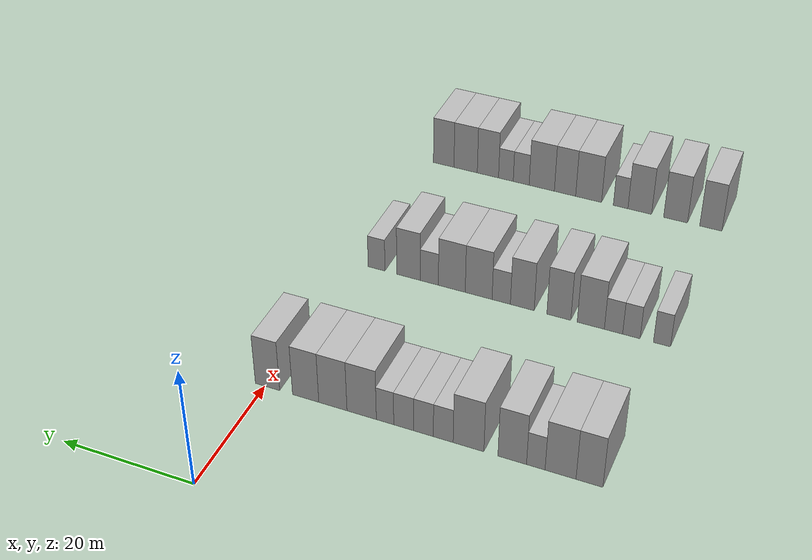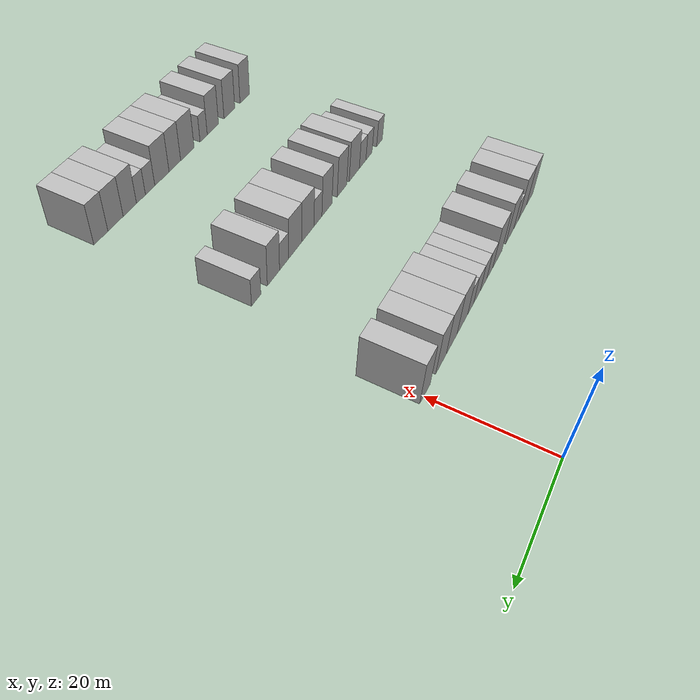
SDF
<sdf version="1.6">
 <world name="default">
  <model name="building_103">
   <static>1</static>
   <pose>25.0000 -47.6280 0 0.000000 0.000000 0.000000</pose>
   <link name="link">
    <pose>0 0 4.50 0 0 0</pose>
    <collision name="collision"><geometry><box><size>10.0000 3.6710 9.0000</size></box></geometry></collision>
    <visual name="visual">
     <cast_shadows>0</cast_shadows>
     <geometry><box><size>10.0000 3.6710 9.0000</size></box></geometry>
     <material>
      <script>
       <uri>model://HANNAS_wall/materials/scripts</uri>
       <uri>model://HANNAS_wall/materials/textures</uri>
       <name>vrc/HANNAS_wall</name>
      </script>
     </material>
    </visual>
   </link>
  </model>
  <model name="building_104">
   <static>1</static>
   <pose>25.0000 -43.6523 0 0.000000 0.000000 0.000000</pose>
   <link name="link">
    <pose>0 0 4.50 0 0 0</pose>
    <collision name="collision"><geometry><box><size>10.0000 4.2803 9.0000</size></box></geometry></collision>
    <visual name="visual">
     <cast_shadows>0</cast_shadows>
     <geometry><box><size>10.0000 4.2803 9.0000</size></box></geometry>
     <material>
      <script>
       <uri>model://HANNAS_wall/materials/scripts</uri>
       <uri>model://HANNAS_wall/materials/textures</uri>
       <name>vrc/HANNAS_wall</name>
      </script>
     </material>
    </visual>
   </link>
  </model>
  <model name="building_105">
   <static>1</static>
   <pose>25.0000 -40.2181 0 0.000000 0.000000 0.000000</pose>
   <link name="link">
    <pose>0 0 3.00 0 0 0</pose>
    <collision name="collision"><geometry><box><size>10.0000 2.5882 6.0000</size></box></geometry></collision>
    <visual name="visual">
     <cast_shadows>0</cast_shadows>
     <geometry><box><size>10.0000 2.5882 6.0000</size></box></geometry>
     <material>
      <script>
       <uri>model://HANNAS_wall/materials/scripts</uri>
       <uri>model://HANNAS_wall/materials/textures</uri>
       <name>vrc/HANNAS_wall</name>
      </script>
     </material>
    </visual>
   </link>
  </model>
  <model name="building_106">
   <static>1</static>
   <pose>25.0000 -36.9056 0 0.000000 0.000000 0.000000</pose>
   <link name="link">
    <pose>0 0 4.50 0 0 0</pose>
    <collision name="collision"><geometry><box><size>10.0000 4.0369 9.0000</size></box></geometry></collision>
    <visual name="visual">
     <cast_shadows>0</cast_shadows>
     <geometry><box><size>10.0000 4.0369 9.0000</size></box></geometry>
     <material>
      <script>
       <uri>model://HANNAS_wall/materials/scripts</uri>
       <uri>model://HANNAS_wall/materials/textures</uri>
       <name>vrc/HANNAS_wall</name>
      </script>
     </material>
    </visual>
   </link>
  </model>
  <model name="building_107">
   <static>1</static>
   <pose>25.0000 -30.6766 0 0.000000 0.000000 0.000000</pose>
   <link name="link">
    <pose>0 0 4.50 0 0 0</pose>
    <collision name="collision"><geometry><box><size>10.0000 4.4210 9.0000</size></box></geometry></collision>
    <visual name="visual">
     <cast_shadows>0</cast_shadows>
     <geometry><box><size>10.0000 4.4210 9.0000</size></box></geometry>
     <material>
      <script>
       <uri>model://HANNAS_wall/materials/scripts</uri>
       <uri>model://HANNAS_wall/materials/textures</uri>
       <name>vrc/HANNAS_wall</name>
      </script>
     </material>
    </visual>
   </link>
  </model>
  <model name="building_108">
   <static>1</static>
   <pose>25.0000 -27.0266 0 0.000000 0.000000 0.000000</pose>
   <link name="link">
    <pose>0 0 3.00 0 0 0</pose>
    <collision name="collision"><geometry><box><size>10.0000 2.8790 6.0000</size></box></geometry></collision>
    <visual name="visual">
     <cast_shadows>0</cast_shadows>
     <geometry><box><size>10.0000 2.8790 6.0000</size></box></geometry>
     <material>
      <script>
       <uri>model://HANNAS_wall/materials/scripts</uri>
       <uri>model://HANNAS_wall/materials/textures</uri>
       <name>vrc/HANNAS_wall</name>
      </script>
     </material>
    </visual>
   </link>
  </model>
  <model name="building_109">
   <static>1</static>
   <pose>25.0000 -24.1309 0 0.000000 0.000000 0.000000</pose>
   <link name="link">
    <pose>0 0 3.00 0 0 0</pose>
    <collision name="collision"><geometry><box><size>10.0000 2.9124 6.0000</size></box></geometry></collision>
    <visual name="visual">
     <cast_shadows>0</cast_shadows>
     <geometry><box><size>10.0000 2.9124 6.0000</size></box></geometry>
     <material>
      <script>
       <uri>model://HANNAS_wall/materials/scripts</uri>
       <uri>model://HANNAS_wall/materials/textures</uri>
       <name>vrc/HANNAS_wall</name>
      </script>
     </material>
    </visual>
   </link>
  </model>
  <model name="building_110">
   <static>1</static>
   <pose>25.0000 -21.2109 0 0.000000 0.000000 0.000000</pose>
   <link name="link">
    <pose>0 0 3.00 0 0 0</pose>
    <collision name="collision"><geometry><box><size>10.0000 2.9277 6.0000</size></box></geometry></collision>
    <visual name="visual">
     <cast_shadows>0</cast_shadows>
     <geometry><box><size>10.0000 2.9277 6.0000</size></box></geometry>
     <material>
      <script>
       <uri>model://HANNAS_wall/materials/scripts</uri>
       <uri>model://HANNAS_wall/materials/textures</uri>
       <name>vrc/HANNAS_wall</name>
      </script>
     </material>
    </visual>
   </link>
  </model>
  <model name="building_111">
   <static>1</static>
   <pose>25.0000 -18.4468 0 0.000000 0.000000 0.000000</pose>
   <link name="link">
    <pose>0 0 3.00 0 0 0</pose>
    <collision name="collision"><geometry><box><size>10.0000 2.6004 6.0000</size></box></geometry></collision>
    <visual name="visual">
     <cast_shadows>0</cast_shadows>
     <geometry><box><size>10.0000 2.6004 6.0000</size></box></geometry>
     <material>
      <script>
       <uri>model://HANNAS_wall/materials/scripts</uri>
       <uri>model://HANNAS_wall/materials/textures</uri>
       <name>vrc/HANNAS_wall</name>
      </script>
     </material>
    </visual>
   </link>
  </model>
  <model name="building_112">
   <static>1</static>
   <pose>25.0000 -14.9306 0 0.000000 0.000000 0.000000</pose>
   <link name="link">
    <pose>0 0 4.50 0 0 0</pose>
    <collision name="collision"><geometry><box><size>10.0000 4.4321 9.0000</size></box></geometry></collision>
    <visual name="visual">
     <cast_shadows>0</cast_shadows>
     <geometry><box><size>10.0000 4.4321 9.0000</size></box></geometry>
     <material>
      <script>
       <uri>model://HANNAS_wall/materials/scripts</uri>
       <uri>model://HANNAS_wall/materials/textures</uri>
       <name>vrc/HANNAS_wall</name>
      </script>
     </material>
    </visual>
   </link>
  </model>
  <model name="building_113">
   <static>1</static>
   <pose>25.0000 -10.5578 0 0.000000 0.000000 0.000000</pose>
   <link name="link">
    <pose>0 0 4.50 0 0 0</pose>
    <collision name="collision"><geometry><box><size>10.0000 4.3134 9.0000</size></box></geometry></collision>
    <visual name="visual">
     <cast_shadows>0</cast_shadows>
     <geometry><box><size>10.0000 4.3134 9.0000</size></box></geometry>
     <material>
      <script>
       <uri>model://HANNAS_wall/materials/scripts</uri>
       <uri>model://HANNAS_wall/materials/textures</uri>
       <name>vrc/HANNAS_wall</name>
      </script>
     </material>
    </visual>
   </link>
  </model>
  <model name="building_114">
   <static>1</static>
   <pose>25.0000 -6.3691 0 0.000000 0.000000 0.000000</pose>
   <link name="link">
    <pose>0 0 4.50 0 0 0</pose>
    <collision name="collision"><geometry><box><size>10.0000 4.0641 9.0000</size></box></geometry></collision>
    <visual name="visual">
     <cast_shadows>0</cast_shadows>
     <geometry><box><size>10.0000 4.0641 9.0000</size></box></geometry>
     <material>
      <script>
       <uri>model://HANNAS_wall/materials/scripts</uri>
       <uri>model://HANNAS_wall/materials/textures</uri>
       <name>vrc/HANNAS_wall</name>
      </script>
     </material>
    </visual>
   </link>
  </model>
  <model name="building_115">
   <static>1</static>
   <pose>25.0000 -0.4222 0 0.000000 0.000000 0.000000</pose>
   <link name="link">
    <pose>0 0 4.50 0 0 0</pose>
    <collision name="collision"><geometry><box><size>10.0000 3.8298 9.0000</size></box></geometry></collision>
    <visual name="visual">
     <cast_shadows>0</cast_shadows>
     <geometry><box><size>10.0000 3.8298 9.0000</size></box></geometry>
     <material>
      <script>
       <uri>model://HANNAS_wall/materials/scripts</uri>
       <uri>model://HANNAS_wall/materials/textures</uri>
       <name>vrc/HANNAS_wall</name>
      </script>
     </material>
    </visual>
   </link>
  </model>
  <model name="building_340">
   <static>1</static>
   <pose>55.0000 -49.1489 0 0.000000 0.000000 0.000000</pose>
   <link name="link">
    <pose>0 0 3.00 0 0 0</pose>
    <collision name="collision"><geometry><box><size>10.0000 2.5612 6.0000</size></box></geometry></collision>
    <visual name="visual">
     <cast_shadows>0</cast_shadows>
     <geometry><box><size>10.0000 2.5612 6.0000</size></box></geometry>
     <material>
      <script>
       <uri>model://HANNAS_wall/materials/scripts</uri>
       <uri>model://HANNAS_wall/materials/textures</uri>
       <name>vrc/HANNAS_wall</name>
      </script>
     </material>
    </visual>
   </link>
  </model>
  <model name="building_341">
   <static>1</static>
   <pose>55.0000 -44.5460 0 0.000000 0.000000 0.000000</pose>
   <link name="link">
    <pose>0 0 3.00 0 0 0</pose>
    <collision name="collision"><geometry><box><size>10.0000 2.6445 6.0000</size></box></geometry></collision>
    <visual name="visual">
     <cast_shadows>0</cast_shadows>
     <geometry><box><size>10.0000 2.6445 6.0000</size></box></geometry>
     <material>
      <script>
       <uri>model://HANNAS_wall/materials/scripts</uri>
       <uri>model://HANNAS_wall/materials/textures</uri>
       <name>vrc/HANNAS_wall</name>
      </script>
     </material>
    </visual>
   </link>
  </model>
  <model name="building_342">
   <static>1</static>
   <pose>55.0000 -41.8315 0 0.000000 0.000000 0.000000</pose>
   <link name="link">
    <pose>0 0 3.00 0 0 0</pose>
    <collision name="collision"><geometry><box><size>10.0000 2.7845 6.0000</size></box></geometry></collision>
    <visual name="visual">
     <cast_shadows>0</cast_shadows>
     <geometry><box><size>10.0000 2.7845 6.0000</size></box></geometry>
     <material>
      <script>
       <uri>model://HANNAS_wall/materials/scripts</uri>
       <uri>model://HANNAS_wall/materials/textures</uri>
       <name>vrc/HANNAS_wall</name>
      </script>
     </material>
    </visual>
   </link>
  </model>
  <model name="building_343">
   <static>1</static>
   <pose>55.0000 -38.3516 0 0.000000 0.000000 0.000000</pose>
   <link name="link">
    <pose>0 0 4.50 0 0 0</pose>
    <collision name="collision"><geometry><box><size>10.0000 4.1754 9.0000</size></box></geometry></collision>
    <visual name="visual">
     <cast_shadows>0</cast_shadows>
     <geometry><box><size>10.0000 4.1754 9.0000</size></box></geometry>
     <material>
      <script>
       <uri>model://HANNAS_wall/materials/scripts</uri>
       <uri>model://HANNAS_wall/materials/textures</uri>
       <name>vrc/HANNAS_wall</name>
      </script>
     </material>
    </visual>
   </link>
  </model>
  <model name="building_344">
   <static>1</static>
   <pose>55.0000 -33.3972 0 0.000000 0.000000 0.000000</pose>
   <link name="link">
    <pose>0 0 4.50 0 0 0</pose>
    <collision name="collision"><geometry><box><size>10.0000 3.7335 9.0000</size></box></geometry></collision>
    <visual name="visual">
     <cast_shadows>0</cast_shadows>
     <geometry><box><size>10.0000 3.7335 9.0000</size></box></geometry>
     <material>
      <script>
       <uri>model://HANNAS_wall/materials/scripts</uri>
       <uri>model://HANNAS_wall/materials/textures</uri>
       <name>vrc/HANNAS_wall</name>
      </script>
     </material>
    </visual>
   </link>
  </model>
  <model name="building_345">
   <static>1</static>
   <pose>55.0000 -27.6449 0 0.000000 0.000000 0.000000</pose>
   <link name="link">
    <pose>0 0 4.50 0 0 0</pose>
    <collision name="collision"><geometry><box><size>10.0000 3.7711 9.0000</size></box></geometry></collision>
    <visual name="visual">
     <cast_shadows>0</cast_shadows>
     <geometry><box><size>10.0000 3.7711 9.0000</size></box></geometry>
     <material>
      <script>
       <uri>model://HANNAS_wall/materials/scripts</uri>
       <uri>model://HANNAS_wall/materials/textures</uri>
       <name>vrc/HANNAS_wall</name>
      </script>
     </material>
    </visual>
   </link>
  </model>
  <model name="building_346">
   <static>1</static>
   <pose>55.0000 -24.2952 0 0.000000 0.000000 0.000000</pose>
   <link name="link">
    <pose>0 0 3.00 0 0 0</pose>
    <collision name="collision"><geometry><box><size>10.0000 2.9284 6.0000</size></box></geometry></collision>
    <visual name="visual">
     <cast_shadows>0</cast_shadows>
     <geometry><box><size>10.0000 2.9284 6.0000</size></box></geometry>
     <material>
      <script>
       <uri>model://HANNAS_wall/materials/scripts</uri>
       <uri>model://HANNAS_wall/materials/textures</uri>
       <name>vrc/HANNAS_wall</name>
      </script>
     </material>
    </visual>
   </link>
  </model>
  <model name="building_347">
   <static>1</static>
   <pose>55.0000 -20.6633 0 0.000000 0.000000 0.000000</pose>
   <link name="link">
    <pose>0 0 4.50 0 0 0</pose>
    <collision name="collision"><geometry><box><size>10.0000 4.3354 9.0000</size></box></geometry></collision>
    <visual name="visual">
     <cast_shadows>0</cast_shadows>
     <geometry><box><size>10.0000 4.3354 9.0000</size></box></geometry>
     <material>
      <script>
       <uri>model://HANNAS_wall/materials/scripts</uri>
       <uri>model://HANNAS_wall/materials/textures</uri>
       <name>vrc/HANNAS_wall</name>
      </script>
     </material>
    </visual>
   </link>
  </model>
  <model name="building_348">
   <static>1</static>
   <pose>55.0000 -16.2978 0 0.000000 0.000000 0.000000</pose>
   <link name="link">
    <pose>0 0 4.50 0 0 0</pose>
    <collision name="collision"><geometry><box><size>10.0000 4.3956 9.0000</size></box></geometry></collision>
    <visual name="visual">
     <cast_shadows>0</cast_shadows>
     <geometry><box><size>10.0000 4.3956 9.0000</size></box></geometry>
     <material>
      <script>
       <uri>model://HANNAS_wall/materials/scripts</uri>
       <uri>model://HANNAS_wall/materials/textures</uri>
       <name>vrc/HANNAS_wall</name>
      </script>
     </material>
    </visual>
   </link>
  </model>
  <model name="building_349">
   <static>1</static>
   <pose>55.0000 -12.6005 0 0.000000 0.000000 0.000000</pose>
   <link name="link">
    <pose>0 0 3.00 0 0 0</pose>
    <collision name="collision"><geometry><box><size>10.0000 2.9990 6.0000</size></box></geometry></collision>
    <visual name="visual">
     <cast_shadows>0</cast_shadows>
     <geometry><box><size>10.0000 2.9990 6.0000</size></box></geometry>
     <material>
      <script>
       <uri>model://HANNAS_wall/materials/scripts</uri>
       <uri>model://HANNAS_wall/materials/textures</uri>
       <name>vrc/HANNAS_wall</name>
      </script>
     </material>
    </visual>
   </link>
  </model>
  <model name="building_350">
   <static>1</static>
   <pose>55.0000 -9.1577 0 0.000000 0.000000 0.000000</pose>
   <link name="link">
    <pose>0 0 4.50 0 0 0</pose>
    <collision name="collision"><geometry><box><size>10.0000 3.8865 9.0000</size></box></geometry></collision>
    <visual name="visual">
     <cast_shadows>0</cast_shadows>
     <geometry><box><size>10.0000 3.8865 9.0000</size></box></geometry>
     <material>
      <script>
       <uri>model://HANNAS_wall/materials/scripts</uri>
       <uri>model://HANNAS_wall/materials/textures</uri>
       <name>vrc/HANNAS_wall</name>
      </script>
     </material>
    </visual>
   </link>
  </model>
  <model name="building_351">
   <static>1</static>
   <pose>55.0000 -3.7929 0 0.000000 0.000000 0.000000</pose>
   <link name="link">
    <pose>0 0 3.00 0 0 0</pose>
    <collision name="collision"><geometry><box><size>10.0000 2.8430 6.0000</size></box></geometry></collision>
    <visual name="visual">
     <cast_shadows>0</cast_shadows>
     <geometry><box><size>10.0000 2.8430 6.0000</size></box></geometry>
     <material>
      <script>
       <uri>model://HANNAS_wall/materials/scripts</uri>
       <uri>model://HANNAS_wall/materials/textures</uri>
       <name>vrc/HANNAS_wall</name>
      </script>
     </material>
    </visual>
   </link>
  </model>
  <model name="building_547">
   <static>1</static>
   <pose>85.0000 -48.9595 0 0.000000 0.000000 0.000000</pose>
   <link name="link">
    <pose>0 0 4.50 0 0 0</pose>
    <collision name="collision"><geometry><box><size>10.0000 3.6246 9.0000</size></box></geometry></collision>
    <visual name="visual">
     <cast_shadows>0</cast_shadows>
     <geometry><box><size>10.0000 3.6246 9.0000</size></box></geometry>
     <material>
      <script>
       <uri>model://HANNAS_wall/materials/scripts</uri>
       <uri>model://HANNAS_wall/materials/textures</uri>
       <name>vrc/HANNAS_wall</name>
      </script>
     </material>
    </visual>
   </link>
  </model>
  <model name="building_548">
   <static>1</static>
   <pose>85.0000 -43.1726 0 0.000000 0.000000 0.000000</pose>
   <link name="link">
    <pose>0 0 4.50 0 0 0</pose>
    <collision name="collision"><geometry><box><size>10.0000 3.9493 9.0000</size></box></geometry></collision>
    <visual name="visual">
     <cast_shadows>0</cast_shadows>
     <geometry><box><size>10.0000 3.9493 9.0000</size></box></geometry>
     <material>
      <script>
       <uri>model://HANNAS_wall/materials/scripts</uri>
       <uri>model://HANNAS_wall/materials/textures</uri>
       <name>vrc/HANNAS_wall</name>
      </script>
     </material>
    </visual>
   </link>
  </model>
  <model name="building_549">
   <static>1</static>
   <pose>85.0000 -37.2107 0 0.000000 0.000000 0.000000</pose>
   <link name="link">
    <pose>0 0 4.50 0 0 0</pose>
    <collision name="collision"><geometry><box><size>10.0000 3.9744 9.0000</size></box></geometry></collision>
    <visual name="visual">
     <cast_shadows>0</cast_shadows>
     <geometry><box><size>10.0000 3.9744 9.0000</size></box></geometry>
     <material>
      <script>
       <uri>model://HANNAS_wall/materials/scripts</uri>
       <uri>model://HANNAS_wall/materials/textures</uri>
       <name>vrc/HANNAS_wall</name>
      </script>
     </material>
    </visual>
   </link>
  </model>
  <model name="building_550">
   <static>1</static>
   <pose>85.0000 -33.9866 0 0.000000 0.000000 0.000000</pose>
   <link name="link">
    <pose>0 0 3.00 0 0 0</pose>
    <collision name="collision"><geometry><box><size>10.0000 2.4738 6.0000</size></box></geometry></collision>
    <visual name="visual">
     <cast_shadows>0</cast_shadows>
     <geometry><box><size>10.0000 2.4738 6.0000</size></box></geometry>
     <material>
      <script>
       <uri>model://HANNAS_wall/materials/scripts</uri>
       <uri>model://HANNAS_wall/materials/textures</uri>
       <name>vrc/HANNAS_wall</name>
      </script>
     </material>
    </visual>
   </link>
  </model>
  <model name="building_551">
   <static>1</static>
   <pose>85.0000 -28.5258 0 0.000000 0.000000 0.000000</pose>
   <link name="link">
    <pose>0 0 4.50 0 0 0</pose>
    <collision name="collision"><geometry><box><size>10.0000 4.4478 9.0000</size></box></geometry></collision>
    <visual name="visual">
     <cast_shadows>0</cast_shadows>
     <geometry><box><size>10.0000 4.4478 9.0000</size></box></geometry>
     <material>
      <script>
       <uri>model://HANNAS_wall/materials/scripts</uri>
       <uri>model://HANNAS_wall/materials/textures</uri>
       <name>vrc/HANNAS_wall</name>
      </script>
     </material>
    </visual>
   </link>
  </model>
  <model name="building_552">
   <static>1</static>
   <pose>85.0000 -24.4546 0 0.000000 0.000000 0.000000</pose>
   <link name="link">
    <pose>0 0 4.50 0 0 0</pose>
    <collision name="collision"><geometry><box><size>10.0000 3.6946 9.0000</size></box></geometry></collision>
    <visual name="visual">
     <cast_shadows>0</cast_shadows>
     <geometry><box><size>10.0000 3.6946 9.0000</size></box></geometry>
     <material>
      <script>
       <uri>model://HANNAS_wall/materials/scripts</uri>
       <uri>model://HANNAS_wall/materials/textures</uri>
       <name>vrc/HANNAS_wall</name>
      </script>
     </material>
    </visual>
   </link>
  </model>
  <model name="building_553">
   <static>1</static>
   <pose>85.0000 -20.3981 0 0.000000 0.000000 0.000000</pose>
   <link name="link">
    <pose>0 0 4.50 0 0 0</pose>
    <collision name="collision"><geometry><box><size>10.0000 4.4184 9.0000</size></box></geometry></collision>
    <visual name="visual">
     <cast_shadows>0</cast_shadows>
     <geometry><box><size>10.0000 4.4184 9.0000</size></box></geometry>
     <material>
      <script>
       <uri>model://HANNAS_wall/materials/scripts</uri>
       <uri>model://HANNAS_wall/materials/textures</uri>
       <name>vrc/HANNAS_wall</name>
      </script>
     </material>
    </visual>
   </link>
  </model>
  <model name="building_554">
   <static>1</static>
   <pose>85.0000 -16.7844 0 0.000000 0.000000 0.000000</pose>
   <link name="link">
    <pose>0 0 3.00 0 0 0</pose>
    <collision name="collision"><geometry><box><size>10.0000 2.8092 6.0000</size></box></geometry></collision>
    <visual name="visual">
     <cast_shadows>0</cast_shadows>
     <geometry><box><size>10.0000 2.8092 6.0000</size></box></geometry>
     <material>
      <script>
       <uri>model://HANNAS_wall/materials/scripts</uri>
       <uri>model://HANNAS_wall/materials/textures</uri>
       <name>vrc/HANNAS_wall</name>
      </script>
     </material>
    </visual>
   </link>
  </model>
  <model name="building_555">
   <static>1</static>
   <pose>85.0000 -14.0715 0 0.000000 0.000000 0.000000</pose>
   <link name="link">
    <pose>0 0 3.00 0 0 0</pose>
    <collision name="collision"><geometry><box><size>10.0000 2.6165 6.0000</size></box></geometry></collision>
    <visual name="visual">
     <cast_shadows>0</cast_shadows>
     <geometry><box><size>10.0000 2.6165 6.0000</size></box></geometry>
     <material>
      <script>
       <uri>model://HANNAS_wall/materials/scripts</uri>
       <uri>model://HANNAS_wall/materials/textures</uri>
       <name>vrc/HANNAS_wall</name>
      </script>
     </material>
    </visual>
   </link>
  </model>
  <model name="building_556">
   <static>1</static>
   <pose>85.0000 -10.8579 0 0.000000 0.000000 0.000000</pose>
   <link name="link">
    <pose>0 0 4.50 0 0 0</pose>
    <collision name="collision"><geometry><box><size>10.0000 3.8107 9.0000</size></box></geometry></collision>
    <visual name="visual">
     <cast_shadows>0</cast_shadows>
     <geometry><box><size>10.0000 3.8107 9.0000</size></box></geometry>
     <material>
      <script>
       <uri>model://HANNAS_wall/materials/scripts</uri>
       <uri>model://HANNAS_wall/materials/textures</uri>
       <name>vrc/HANNAS_wall</name>
      </script>
     </material>
    </visual>
   </link>
  </model>
  <model name="building_557">
   <static>1</static>
   <pose>85.0000 -6.8442 0 0.000000 0.000000 0.000000</pose>
   <link name="link">
    <pose>0 0 4.50 0 0 0</pose>
    <collision name="collision"><geometry><box><size>10.0000 4.2168 9.0000</size></box></geometry></collision>
    <visual name="visual">
     <cast_shadows>0</cast_shadows>
     <geometry><box><size>10.0000 4.2168 9.0000</size></box></geometry>
     <material>
      <script>
       <uri>model://HANNAS_wall/materials/scripts</uri>
       <uri>model://HANNAS_wall/materials/textures</uri>
       <name>vrc/HANNAS_wall</name>
      </script>
     </material>
    </visual>
   </link>
  </model>
  <model name="building_558">
   <static>1</static>
   <pose>85.0000 -2.8600 0 0.000000 0.000000 0.000000</pose>
   <link name="link">
    <pose>0 0 4.50 0 0 0</pose>
    <collision name="collision"><geometry><box><size>10.0000 3.7515 9.0000</size></box></geometry></collision>
    <visual name="visual">
     <cast_shadows>0</cast_shadows>
     <geometry><box><size>10.0000 3.7515 9.0000</size></box></geometry>
     <material>
      <script>
       <uri>model://HANNAS_wall/materials/scripts</uri>
       <uri>model://HANNAS_wall/materials/textures</uri>
       <name>vrc/HANNAS_wall</name>
      </script>
     </material>
    </visual>
   </link>
  </model>
 </world>
</sdf>
